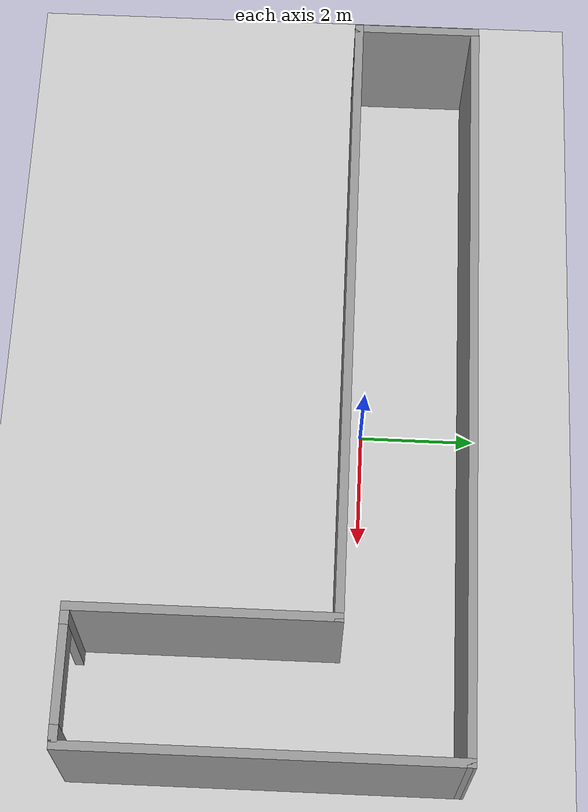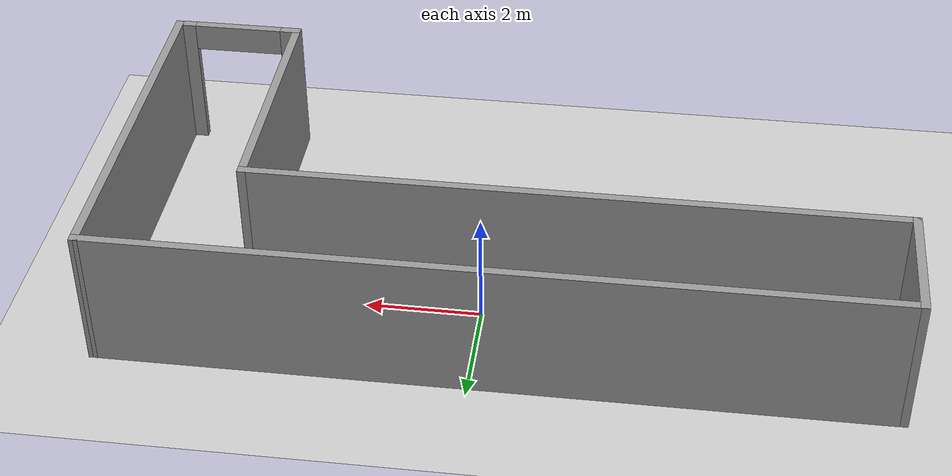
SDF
<?xml version="1.0" ?>
<sdf version="1.4">
  <world name="default">
    <include>
      <uri>model://ground_plane</uri>
    </include>
    <include>
      <uri>model://sun</uri>
    </include>
    <include>
      <uri>model://singtel_floorplan/singtel_floor6_in</uri>
      <name>singtel_floor6_in</name>
    </include>
  </world>
</sdf>

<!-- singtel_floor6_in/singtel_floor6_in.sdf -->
<sdf version='1.6'>
  <model name='singtel_floor6_in'>
    <pose frame=''>-0.382639 -1.43316 0 0 -0 0</pose>
    <link name='Wall_0'>
      <collision name='Wall_0_Collision'>
        <geometry>
          <box>
            <size>13.334 0.15 2.5</size>
          </box>
        </geometry>
        <pose frame=''>0 0 1.25 0 -0 0</pose>
      </collision>
      <visual name='Wall_0_Visual'>
        <pose frame=''>0 0 1.25 0 -0 0</pose>
        <geometry>
          <box>
            <size>13.334 0.15 2.5</size>
          </box>
        </geometry>
        <material>
          <script>
            <uri>file://media/materials/scripts/gazebo.material</uri>
            <name>Gazebo/Grey</name>
          </script>
          <ambient>1 1 1 1</ambient>
        </material>
        <meta>
          <layer>0</layer>
        </meta>
      </visual>
      <pose frame=''>0.068223 3.22637 0 0 -0 0.000393</pose>
    </link>
    <link name='Wall_10'>
      <pose frame=''>5.48977 -3.22899 0 0 -0 0</pose>
      <visual name='Wall_10_Visual_0'>
        <pose frame=''>-0.935217 0 1.25 0 -0 0</pose>
        <geometry>
          <box>
            <size>0.379565 0.15 2.5</size>
          </box>
        </geometry>
        <material>
          <script>
            <uri>file://media/materials/scripts/gazebo.material</uri>
            <name>Gazebo/Grey</name>
          </script>
          <ambient>1 1 1 1</ambient>
        </material>
        <meta>
          <layer>0</layer>
        </meta>
      </visual>
      <collision name='Wall_10_Collision_0'>
        <geometry>
          <box>
            <size>0.379565 0.15 2.5</size>
          </box>
        </geometry>
        <pose frame=''>-0.935217 0 1.25 0 -0 0</pose>
      </collision>
      <visual name='Wall_10_Visual_1'>
        <pose frame=''>0.989783 0 1.25 0 -0 0</pose>
        <geometry>
          <box>
            <size>0.270435 0.15 2.5</size>
          </box>
        </geometry>
        <material>
          <script>
            <uri>file://media/materials/scripts/gazebo.material</uri>
            <name>Gazebo/Grey</name>
          </script>
          <ambient>1 1 1 1</ambient>
        </material>
        <meta>
          <layer>0</layer>
        </meta>
      </visual>
      <collision name='Wall_10_Collision_1'>
        <geometry>
          <box>
            <size>0.270435 0.15 2.5</size>
          </box>
        </geometry>
        <pose frame=''>0.989783 0 1.25 0 -0 0</pose>
      </collision>
      <visual name='Wall_10_Visual_2'>
        <pose frame=''>0.054565 0 2.25 0 -0 0</pose>
        <geometry>
          <box>
            <size>1.6 0.15 0.5</size>
          </box>
        </geometry>
        <material>
          <script>
            <uri>file://media/materials/scripts/gazebo.material</uri>
            <name>Gazebo/Grey</name>
          </script>
          <ambient>1 1 1 1</ambient>
        </material>
        <meta>
          <layer>0</layer>
        </meta>
      </visual>
      <collision name='Wall_10_Collision_2'>
        <geometry>
          <box>
            <size>1.6 0.15 0.5</size>
          </box>
        </geometry>
        <pose frame=''>0.054565 0 2.25 0 -0 0</pose>
      </collision>
    </link>
    <link name='Wall_12'>
      <collision name='Wall_12_Collision'>
        <geometry>
          <box>
            <size>6.6 0.15 2.5</size>
          </box>
        </geometry>
        <pose frame=''>0 0 1.25 0 -0 0</pose>
      </collision>
      <visual name='Wall_12_Visual'>
        <pose frame=''>0 0 1.25 0 -0 0</pose>
        <geometry>
          <box>
            <size>6.6 0.15 2.5</size>
          </box>
        </geometry>
        <material>
          <script>
            <uri>file://media/materials/scripts/gazebo.material</uri>
            <name>Gazebo/Grey</name>
          </script>
          <ambient>1 1 1 1</ambient>
        </material>
        <meta>
          <layer>0</layer>
        </meta>
      </visual>
      <pose frame=''>6.6602 0.003961 0 0 -0 -1.5708</pose>
    </link>
    <link name='Wall_4'>
      <collision name='Wall_4_Collision'>
        <geometry>
          <box>
            <size>11.25 0.15 2.5</size>
          </box>
        </geometry>
        <pose frame=''>0 0 1.25 0 -0 0</pose>
      </collision>
      <visual name='Wall_4_Visual'>
        <pose frame=''>0 0 1.25 0 -0 0</pose>
        <geometry>
          <box>
            <size>11.25 0.15 2.5</size>
          </box>
        </geometry>
        <material>
          <script>
            <uri>file://media/materials/scripts/gazebo.material</uri>
            <name>Gazebo/Grey</name>
          </script>
          <ambient>1 1 1 1</ambient>
        </material>
        <meta>
          <layer>0</layer>
        </meta>
      </visual>
      <pose frame=''>-1.11023 1.12101 0 0 -0 3.14159</pose>
    </link>
    <link name='Wall_6'>
      <collision name='Wall_6_Collision'>
        <geometry>
          <box>
            <size>2.25 0.15 2.5</size>
          </box>
        </geometry>
        <pose frame=''>0 0 1.25 0 -0 0</pose>
      </collision>
      <visual name='Wall_6_Visual'>
        <pose frame=''>0 0 1.25 0 -0 0</pose>
        <geometry>
          <box>
            <size>2.25 0.15 2.5</size>
          </box>
        </geometry>
        <material>
          <script>
            <uri>file://media/materials/scripts/gazebo.material</uri>
            <name>Gazebo/Grey</name>
          </script>
          <ambient>1 1 1 1</ambient>
        </material>
        <meta>
          <layer>0</layer>
        </meta>
      </visual>
      <pose frame=''>-6.66023 2.17101 0 0 -0 1.5708</pose>
    </link>
    <link name='Wall_9'>
      <collision name='Wall_9_Collision'>
        <geometry>
          <box>
            <size>4.5 0.15 2.5</size>
          </box>
        </geometry>
        <pose frame=''>0 0 1.25 0 -0 0</pose>
      </collision>
      <visual name='Wall_9_Visual'>
        <pose frame=''>0 0 1.25 0 -0 0</pose>
        <geometry>
          <box>
            <size>4.5 0.15 2.5</size>
          </box>
        </geometry>
        <material>
          <script>
            <uri>file://media/materials/scripts/gazebo.material</uri>
            <name>Gazebo/Grey</name>
          </script>
          <ambient>1 1 1 1</ambient>
        </material>
        <meta>
          <layer>0</layer>
        </meta>
      </visual>
      <pose frame=''>4.43977 -1.05399 0 0 -0 -1.5708</pose>
    </link>
    <static>1</static>
  </model>
</sdf>
